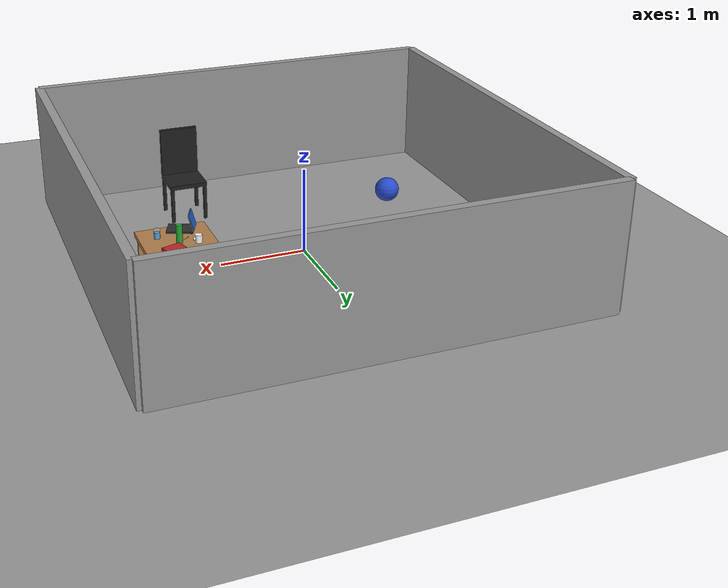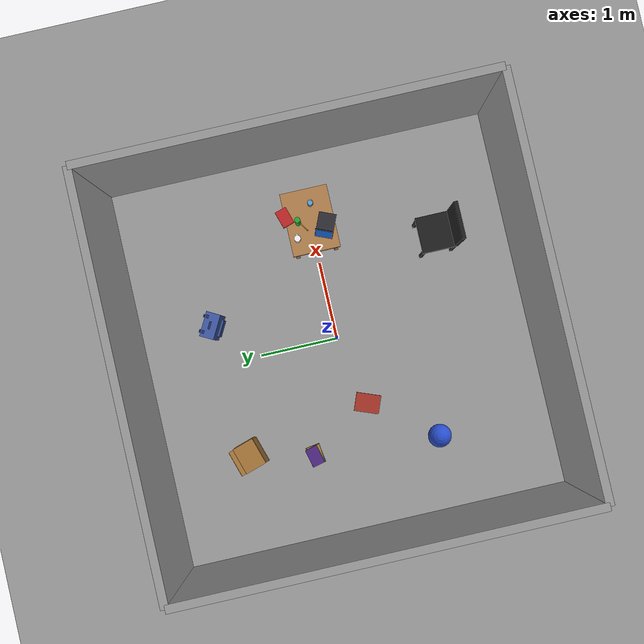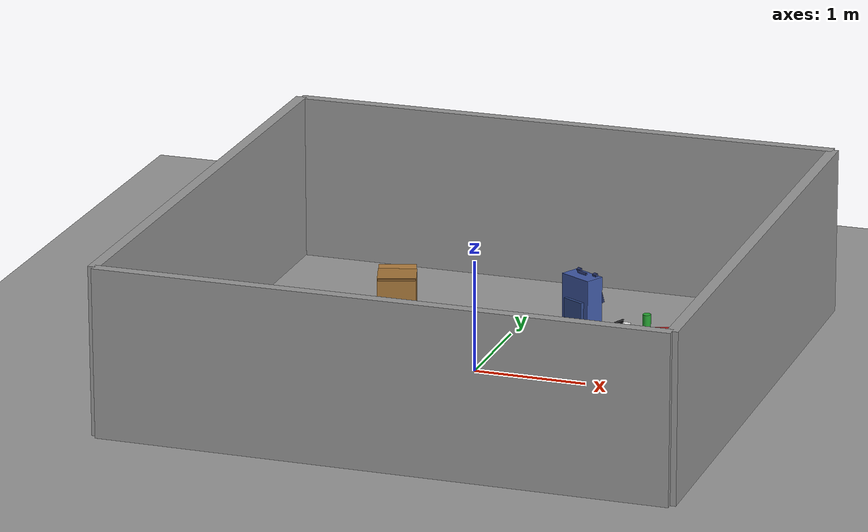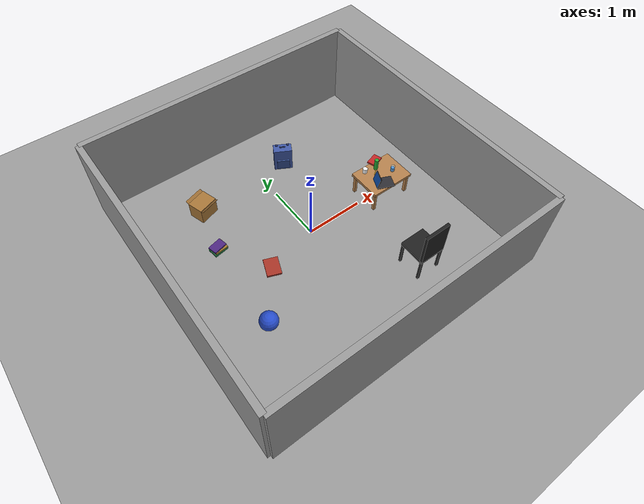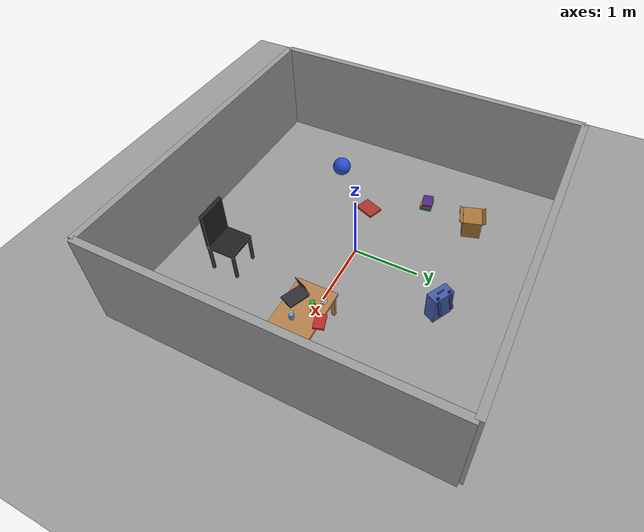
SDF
<?xml version="1.0" ?>
<sdf version="1.7">
  <world name="tar_lab">

    <!-- Los plugins gazebo_ros_* (factory, init, state) los carga gazebo.launch.py
         como plugins de sistema via "-s" — NO se incluyen aquí (darían error
         "incorrect plugin type"). -->

    <scene>
      <ambient>0.7 0.7 0.7 1</ambient>
      <background>0.85 0.88 0.92 1</background>
      <shadows>true</shadows>
    </scene>

    <gui fullscreen="0">
      <camera name="user_camera">
        <pose>-4 -4 4 0 0.5 0.785</pose>
      </camera>
    </gui>

    <!-- Luz solar -->
    <light type="directional" name="sun">
      <cast_shadows>true</cast_shadows>
      <pose>0 0 10 0 0 0</pose>
      <diffuse>0.9 0.9 0.9 1</diffuse>
      <specular>0.2 0.2 0.2 1</specular>
      <direction>-0.4 0.2 -0.9</direction>
    </light>

    <!-- Suelo local (no descarga modelos online, así no se cuelga sin internet) -->
    <model name="floor">
      <static>true</static>
      <link name="link">
        <collision name="c">
          <geometry><plane><normal>0 0 1</normal><size>20 20</size></plane></geometry>
          <surface><friction><ode><mu>1</mu><mu2>1</mu2></ode></friction></surface>
        </collision>
        <visual name="v">
          <geometry><plane><normal>0 0 1</normal><size>20 20</size></plane></geometry>
          <material><script>
            <uri>file://media/materials/scripts/gazebo.material</uri>
            <name>Gazebo/Grey</name>
          </script></material>
        </visual>
      </link>
    </model>

    <!-- ===== Paredes (5x5 m) ===== -->
    <model name="wall_n">
      <static>true</static>
      <pose>0 2.5 0.75 0 0 0</pose>
      <link name="l">
        <collision name="c"><geometry><box><size>5 0.1 1.5</size></box></geometry></collision>
        <visual name="v">
          <geometry><box><size>5 0.1 1.5</size></box></geometry>
          <material><script>
            <uri>file://media/materials/scripts/gazebo.material</uri>
            <name>Gazebo/Grey</name>
          </script></material>
        </visual>
      </link>
    </model>
    <model name="wall_s">
      <static>true</static>
      <pose>0 -2.5 0.75 0 0 0</pose>
      <link name="l">
        <collision name="c"><geometry><box><size>5 0.1 1.5</size></box></geometry></collision>
        <visual name="v">
          <geometry><box><size>5 0.1 1.5</size></box></geometry>
          <material><script>
            <uri>file://media/materials/scripts/gazebo.material</uri>
            <name>Gazebo/Grey</name>
          </script></material>
        </visual>
      </link>
    </model>
    <model name="wall_e">
      <static>true</static>
      <pose>2.5 0 0.75 0 0 1.5708</pose>
      <link name="l">
        <collision name="c"><geometry><box><size>5 0.1 1.5</size></box></geometry></collision>
        <visual name="v">
          <geometry><box><size>5 0.1 1.5</size></box></geometry>
          <material><script>
            <uri>file://media/materials/scripts/gazebo.material</uri>
            <name>Gazebo/Grey</name>
          </script></material>
        </visual>
      </link>
    </model>
    <model name="wall_w">
      <static>true</static>
      <pose>-2.5 0 0.75 0 0 1.5708</pose>
      <link name="l">
        <collision name="c"><geometry><box><size>5 0.1 1.5</size></box></geometry></collision>
        <visual name="v">
          <geometry><box><size>5 0.1 1.5</size></box></geometry>
          <material><script>
            <uri>file://media/materials/scripts/gazebo.material</uri>
            <name>Gazebo/Grey</name>
          </script></material>
        </visual>
      </link>
    </model>

    <!-- ===== Mesa baja al frente (40cm de alto — adaptada al FOV del TB3) ===== -->
    <model name="table">
      <static>true</static>
      <pose>1.5 0 0 0 0 0</pose>
      <link name="top">
        <pose>0 0 0.4 0 0 0</pose>
        <collision name="c"><geometry><box><size>0.8 0.6 0.05</size></box></geometry></collision>
        <visual name="v">
          <geometry><box><size>0.8 0.6 0.05</size></box></geometry>
          <material><script>
            <uri>file://media/materials/scripts/gazebo.material</uri>
            <name>Gazebo/Wood</name>
          </script></material>
        </visual>
      </link>
      <link name="legs">
        <collision name="lf"><pose> 0.35  0.25 0.2 0 0 0</pose><geometry><box><size>0.05 0.05 0.4</size></box></geometry></collision>
        <collision name="rf"><pose> 0.35 -0.25 0.2 0 0 0</pose><geometry><box><size>0.05 0.05 0.4</size></box></geometry></collision>
        <collision name="lb"><pose>-0.35  0.25 0.2 0 0 0</pose><geometry><box><size>0.05 0.05 0.4</size></box></geometry></collision>
        <collision name="rb"><pose>-0.35 -0.25 0.2 0 0 0</pose><geometry><box><size>0.05 0.05 0.4</size></box></geometry></collision>
        <visual name="vlf"><pose> 0.35  0.25 0.2 0 0 0</pose><geometry><box><size>0.05 0.05 0.4</size></box></geometry>
          <material><script><uri>file://media/materials/scripts/gazebo.material</uri><name>Gazebo/Wood</name></script></material></visual>
        <visual name="vrf"><pose> 0.35 -0.25 0.2 0 0 0</pose><geometry><box><size>0.05 0.05 0.4</size></box></geometry>
          <material><script><uri>file://media/materials/scripts/gazebo.material</uri><name>Gazebo/Wood</name></script></material></visual>
        <visual name="vlb"><pose>-0.35  0.25 0.2 0 0 0</pose><geometry><box><size>0.05 0.05 0.4</size></box></geometry>
          <material><script><uri>file://media/materials/scripts/gazebo.material</uri><name>Gazebo/Wood</name></script></material></visual>
        <visual name="vrb"><pose>-0.35 -0.25 0.2 0 0 0</pose><geometry><box><size>0.05 0.05 0.4</size></box></geometry>
          <material><script><uri>file://media/materials/scripts/gazebo.material</uri><name>Gazebo/Wood</name></script></material></visual>
      </link>
    </model>

    <!-- ===== Botella verde encima de la mesa ===== -->
    <model name="bottle">
      <pose>1.5 0.15 0.53 0 0 0</pose>
      <link name="l">
        <inertial><mass>0.3</mass>
          <inertia><ixx>0.001</ixx><iyy>0.001</iyy><izz>0.0005</izz>
                   <ixy>0</ixy><ixz>0</ixz><iyz>0</iyz></inertia></inertial>
        <collision name="c"><geometry><cylinder><radius>0.035</radius><length>0.22</length></cylinder></geometry></collision>
        <visual name="v">
          <geometry><cylinder><radius>0.035</radius><length>0.22</length></cylinder></geometry>
          <material><script>
            <uri>file://media/materials/scripts/gazebo.material</uri>
            <name>Gazebo/Green</name>
          </script></material>
        </visual>
      </link>
    </model>

    <!-- ===== Silla a la derecha ===== -->
    <model name="chair">
      <static>true</static>
      <pose>1.0 -1.5 0 0 0 1.5708</pose>
      <link name="seat">
        <pose>0 0 0.45 0 0 0</pose>
        <collision name="c"><geometry><box><size>0.45 0.45 0.05</size></box></geometry></collision>
        <visual name="v"><geometry><box><size>0.45 0.45 0.05</size></box></geometry>
          <material><script><uri>file://media/materials/scripts/gazebo.material</uri><name>Gazebo/Black</name></script></material></visual>
      </link>
      <link name="back">
        <pose>-0.2 0 0.75 0 0 0</pose>
        <collision name="c"><geometry><box><size>0.05 0.45 0.6</size></box></geometry></collision>
        <visual name="v"><geometry><box><size>0.05 0.45 0.6</size></box></geometry>
          <material><script><uri>file://media/materials/scripts/gazebo.material</uri><name>Gazebo/Black</name></script></material></visual>
      </link>
      <link name="legs">
        <collision name="lf"><pose> 0.2  0.2 0.225 0 0 0</pose><geometry><box><size>0.04 0.04 0.45</size></box></geometry></collision>
        <collision name="rf"><pose> 0.2 -0.2 0.225 0 0 0</pose><geometry><box><size>0.04 0.04 0.45</size></box></geometry></collision>
        <collision name="lb"><pose>-0.2  0.2 0.225 0 0 0</pose><geometry><box><size>0.04 0.04 0.45</size></box></geometry></collision>
        <collision name="rb"><pose>-0.2 -0.2 0.225 0 0 0</pose><geometry><box><size>0.04 0.04 0.45</size></box></geometry></collision>
        <visual name="vlf"><pose> 0.2  0.2 0.225 0 0 0</pose><geometry><box><size>0.04 0.04 0.45</size></box></geometry>
          <material><script><uri>file://media/materials/scripts/gazebo.material</uri><name>Gazebo/Black</name></script></material></visual>
        <visual name="vrf"><pose> 0.2 -0.2 0.225 0 0 0</pose><geometry><box><size>0.04 0.04 0.45</size></box></geometry>
          <material><script><uri>file://media/materials/scripts/gazebo.material</uri><name>Gazebo/Black</name></script></material></visual>
        <visual name="vlb"><pose>-0.2  0.2 0.225 0 0 0</pose><geometry><box><size>0.04 0.04 0.45</size></box></geometry>
          <material><script><uri>file://media/materials/scripts/gazebo.material</uri><name>Gazebo/Black</name></script></material></visual>
        <visual name="vrb"><pose>-0.2 -0.2 0.225 0 0 0</pose><geometry><box><size>0.04 0.04 0.45</size></box></geometry>
          <material><script><uri>file://media/materials/scripts/gazebo.material</uri><name>Gazebo/Black</name></script></material></visual>
      </link>
    </model>

    <!-- ===========================================================
         OBJETOS ENCIMA DE LA MESA (top z ≈ 0.825)
         =========================================================== -->

    <!-- Portátil abierto (base + pantalla inclinada) -->
    <model name="laptop">
      <static>true</static>
      <pose>1.4 -0.18 0.435 0 0 -0.4</pose>
      <link name="base">
        <collision name="c"><geometry><box><size>0.30 0.22 0.02</size></box></geometry></collision>
        <visual name="v">
          <geometry><box><size>0.30 0.22 0.02</size></box></geometry>
          <material><ambient>0.12 0.12 0.13 1</ambient><diffuse>0.18 0.18 0.20 1</diffuse>
                    <specular>0.5 0.5 0.5 1</specular></material>
        </visual>
      </link>
      <link name="screen">
        <pose>-0.13 0 0.11 0 -1.3 0</pose>
        <collision name="c"><geometry><box><size>0.20 0.22 0.01</size></box></geometry></collision>
        <visual name="v">
          <geometry><box><size>0.20 0.22 0.01</size></box></geometry>
          <material><ambient>0.05 0.05 0.06 1</ambient><diffuse>0.08 0.08 0.09 1</diffuse></material>
        </visual>
      </link>
      <link name="display">
        <pose>-0.13 0 0.11 0 -1.3 0</pose>
        <visual name="v">
          <pose>0 0 0.006 0 0 0</pose>
          <geometry><box><size>0.185 0.205 0.001</size></box></geometry>
          <material><ambient>0.05 0.20 0.45 1</ambient><diffuse>0.10 0.40 0.85 1</diffuse>
                    <emissive>0.05 0.15 0.30 1</emissive></material>
        </visual>
      </link>
    </model>

    <!-- Libro encima de la mesa (rojo) -->
    <model name="book">
      <static>true</static>
      <pose>1.6 0.30 0.440 0 0 0.3</pose>
      <link name="l">
        <collision name="c"><geometry><box><size>0.22 0.15 0.03</size></box></geometry></collision>
        <visual name="v">
          <geometry><box><size>0.22 0.15 0.03</size></box></geometry>
          <material><ambient>0.55 0.10 0.10 1</ambient><diffuse>0.75 0.15 0.15 1</diffuse></material>
        </visual>
      </link>
    </model>

    <!-- Vaso con agua (vaso transparente azulado + nivel de agua interior) -->
    <model name="water_glass">
      <pose>1.7 -0.05 0.480 0 0 0</pose>
      <link name="glass">
        <inertial><mass>0.15</mass>
          <inertia><ixx>0.0001</ixx><iyy>0.0001</iyy><izz>0.0001</izz>
                   <ixy>0</ixy><ixz>0</ixz><iyz>0</iyz></inertia></inertial>
        <collision name="c"><geometry><cylinder><radius>0.035</radius><length>0.11</length></cylinder></geometry></collision>
        <visual name="v">
          <geometry><cylinder><radius>0.035</radius><length>0.11</length></cylinder></geometry>
          <material><ambient>0.75 0.85 0.95 0.35</ambient><diffuse>0.85 0.95 1.00 0.35</diffuse>
                    <specular>0.9 0.9 1.0 1</specular></material>
        </visual>
        <visual name="water">
          <pose>0 0 -0.018 0 0 0</pose>
          <geometry><cylinder><radius>0.032</radius><length>0.07</length></cylinder></geometry>
          <material><ambient>0.10 0.35 0.65 1</ambient><diffuse>0.15 0.50 0.85 1</diffuse>
                    <specular>0.3 0.5 0.8 1</specular></material>
        </visual>
      </link>
    </model>

    <!-- Lápiz amarillo con punta -->
    <model name="pencil">
      <pose>1.45 0.10 0.432 0 1.5708 0.6</pose>
      <link name="body">
        <inertial><mass>0.01</mass>
          <inertia><ixx>1e-6</ixx><iyy>1e-6</iyy><izz>1e-7</izz>
                   <ixy>0</ixy><ixz>0</ixz><iyz>0</iyz></inertia></inertial>
        <collision name="c"><geometry><cylinder><radius>0.005</radius><length>0.16</length></cylinder></geometry></collision>
        <visual name="v">
          <geometry><cylinder><radius>0.005</radius><length>0.16</length></cylinder></geometry>
          <material><ambient>0.90 0.75 0.10 1</ambient><diffuse>1.00 0.85 0.15 1</diffuse></material>
        </visual>
        <visual name="tip">
          <pose>0 0 0.085 0 0 0</pose>
          <geometry><cylinder><radius>0.005</radius><length>0.01</length></cylinder></geometry>
          <material><ambient>0.10 0.10 0.10 1</ambient><diffuse>0.15 0.15 0.15 1</diffuse></material>
        </visual>
        <visual name="eraser">
          <pose>0 0 -0.083 0 0 0</pose>
          <geometry><cylinder><radius>0.0055</radius><length>0.012</length></cylinder></geometry>
          <material><ambient>0.65 0.20 0.20 1</ambient><diffuse>0.85 0.30 0.25 1</diffuse></material>
        </visual>
      </link>
    </model>

    <!-- Taza de café (cilindro + asa) -->
    <model name="mug">
      <pose>1.30 0.20 0.470 0 0 0</pose>
      <link name="body">
        <inertial><mass>0.25</mass>
          <inertia><ixx>0.0003</ixx><iyy>0.0003</iyy><izz>0.0002</izz>
                   <ixy>0</ixy><ixz>0</ixz><iyz>0</iyz></inertia></inertial>
        <collision name="c"><geometry><cylinder><radius>0.04</radius><length>0.09</length></cylinder></geometry></collision>
        <visual name="v">
          <geometry><cylinder><radius>0.04</radius><length>0.09</length></cylinder></geometry>
          <material><ambient>0.85 0.85 0.85 1</ambient><diffuse>0.98 0.98 0.98 1</diffuse></material>
        </visual>
        <visual name="handle">
          <pose>0.045 0 0 0 1.5708 0</pose>
          <geometry><cylinder><radius>0.015</radius><length>0.03</length></cylinder></geometry>
          <material><ambient>0.85 0.85 0.85 1</ambient><diffuse>0.98 0.98 0.98 1</diffuse></material>
        </visual>
        <visual name="coffee">
          <pose>0 0 0.035 0 0 0</pose>
          <geometry><cylinder><radius>0.037</radius><length>0.01</length></cylinder></geometry>
          <material><ambient>0.20 0.10 0.05 1</ambient><diffuse>0.30 0.15 0.08 1</diffuse></material>
        </visual>
      </link>
    </model>

    <!-- ===========================================================
         OBJETOS EN EL SUELO
         =========================================================== -->

    <!-- Mochila (cuerpo + bolsillo frontal + asas) -->
    <model name="backpack">
      <pose>0.5 1.5 0.22 0 0 -0.5</pose>
      <link name="body">
        <inertial><mass>1.5</mass>
          <inertia><ixx>0.03</ixx><iyy>0.03</iyy><izz>0.02</izz>
                   <ixy>0</ixy><ixz>0</ixz><iyz>0</iyz></inertia></inertial>
        <collision name="c"><geometry><box><size>0.32 0.18 0.44</size></box></geometry></collision>
        <visual name="v">
          <geometry><box><size>0.32 0.18 0.44</size></box></geometry>
          <material><ambient>0.20 0.25 0.45 1</ambient><diffuse>0.25 0.35 0.65 1</diffuse></material>
        </visual>
        <visual name="front_pocket">
          <pose>0 -0.10 -0.08 0 0 0</pose>
          <geometry><box><size>0.22 0.04 0.18</size></box></geometry>
          <material><ambient>0.15 0.20 0.40 1</ambient><diffuse>0.20 0.30 0.55 1</diffuse></material>
        </visual>
        <visual name="strap_l">
          <pose>-0.10 0.10 0.10 0.3 0 0</pose>
          <geometry><box><size>0.04 0.03 0.30</size></box></geometry>
          <material><ambient>0.10 0.15 0.30 1</ambient><diffuse>0.15 0.20 0.40 1</diffuse></material>
        </visual>
        <visual name="strap_r">
          <pose> 0.10 0.10 0.10 0.3 0 0</pose>
          <geometry><box><size>0.04 0.03 0.30</size></box></geometry>
          <material><ambient>0.10 0.15 0.30 1</ambient><diffuse>0.15 0.20 0.40 1</diffuse></material>
        </visual>
        <visual name="handle">
          <pose>0 0 0.24 0 1.5708 0</pose>
          <geometry><cylinder><radius>0.012</radius><length>0.10</length></cylinder></geometry>
          <material><ambient>0.10 0.15 0.30 1</ambient><diffuse>0.15 0.20 0.40 1</diffuse></material>
        </visual>
      </link>
    </model>

    <!-- Caja de cartón con material (con solapas abiertas) -->
    <model name="cardboard_box">
      <pose>-1.2 1.4 0.15 0 0 0.3</pose>
      <link name="body">
        <inertial><mass>0.8</mass>
          <inertia><ixx>0.01</ixx><iyy>0.01</iyy><izz>0.01</izz>
                   <ixy>0</ixy><ixz>0</ixz><iyz>0</iyz></inertia></inertial>
        <collision name="c"><geometry><box><size>0.35 0.28 0.30</size></box></geometry></collision>
        <visual name="v">
          <geometry><box><size>0.35 0.28 0.30</size></box></geometry>
          <material><ambient>0.50 0.36 0.18 1</ambient><diffuse>0.65 0.46 0.22 1</diffuse></material>
        </visual>
        <visual name="flap_front">
          <pose>0 -0.14 0.13 -0.6 0 0</pose>
          <geometry><box><size>0.34 0.14 0.005</size></box></geometry>
          <material><ambient>0.45 0.32 0.16 1</ambient><diffuse>0.60 0.42 0.20 1</diffuse></material>
        </visual>
        <visual name="flap_back">
          <pose>0  0.14 0.13  0.6 0 0</pose>
          <geometry><box><size>0.34 0.14 0.005</size></box></geometry>
          <material><ambient>0.45 0.32 0.16 1</ambient><diffuse>0.60 0.42 0.20 1</diffuse></material>
        </visual>
      </link>
    </model>

    <!-- Pila de libros en el suelo (3 tomos) -->
    <model name="book_stack">
      <pose>-1.4 0.6 0 0 0 0.15</pose>
      <link name="book_bottom">
        <pose>0 0 0.018 0 0 0</pose>
        <collision name="c"><geometry><box><size>0.25 0.18 0.035</size></box></geometry></collision>
        <visual name="v"><geometry><box><size>0.25 0.18 0.035</size></box></geometry>
          <material><ambient>0.10 0.30 0.20 1</ambient><diffuse>0.15 0.50 0.30 1</diffuse></material></visual>
      </link>
      <link name="book_middle">
        <pose>0.01 -0.005 0.058 0 0 -0.05</pose>
        <collision name="c"><geometry><box><size>0.23 0.17 0.028</size></box></geometry></collision>
        <visual name="v"><geometry><box><size>0.23 0.17 0.028</size></box></geometry>
          <material><ambient>0.40 0.30 0.10 1</ambient><diffuse>0.65 0.50 0.18 1</diffuse></material></visual>
      </link>
      <link name="book_top">
        <pose>-0.005 0.010 0.090 0 0 0.08</pose>
        <collision name="c"><geometry><box><size>0.24 0.16 0.030</size></box></geometry></collision>
        <visual name="v"><geometry><box><size>0.24 0.16 0.030</size></box></geometry>
          <material><ambient>0.20 0.10 0.30 1</ambient><diffuse>0.30 0.15 0.50 1</diffuse></material></visual>
      </link>
    </model>

    <!-- Carpeta archivadora (folder) en el suelo -->
    <model name="folder">
      <pose>-0.9 -0.2 0.02 0 0 1.2</pose>
      <link name="l">
        <inertial><mass>0.3</mass>
          <inertia><ixx>0.001</ixx><iyy>0.002</iyy><izz>0.003</izz>
                   <ixy>0</ixy><ixz>0</ixz><iyz>0</iyz></inertia></inertial>
        <collision name="c"><geometry><box><size>0.32 0.24 0.035</size></box></geometry></collision>
        <visual name="v">
          <geometry><box><size>0.32 0.24 0.035</size></box></geometry>
          <material><ambient>0.45 0.15 0.10 1</ambient><diffuse>0.65 0.20 0.15 1</diffuse></material>
        </visual>
      </link>
    </model>

    <!-- Pelota azul (mantenida del mundo anterior) -->
    <model name="blue_ball">
      <pose>-1.5 -1.0 0.15 0 0 0</pose>
      <link name="l">
        <inertial><mass>0.2</mass>
          <inertia><ixx>0.002</ixx><iyy>0.002</iyy><izz>0.002</izz>
                   <ixy>0</ixy><ixz>0</ixz><iyz>0</iyz></inertia></inertial>
        <collision name="c"><geometry><sphere><radius>0.15</radius></sphere></geometry></collision>
        <visual name="v">
          <geometry><sphere><radius>0.15</radius></sphere></geometry>
          <material><script>
            <uri>file://media/materials/scripts/gazebo.material</uri>
            <name>Gazebo/Blue</name>
          </script></material>
        </visual>
      </link>
    </model>

  </world>
</sdf>
